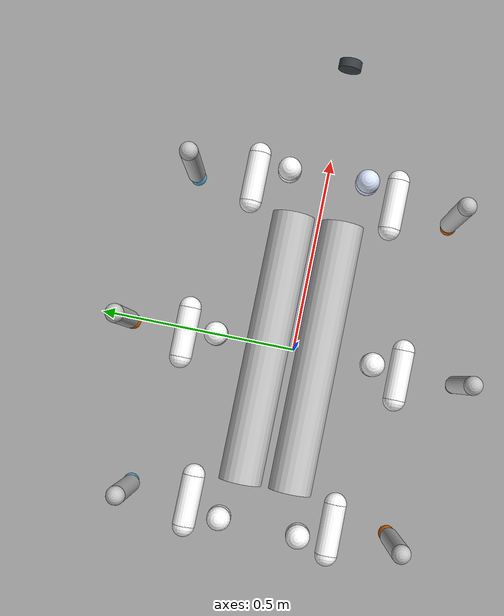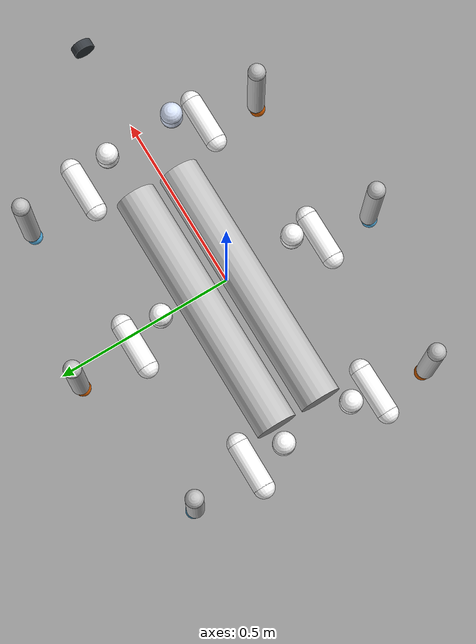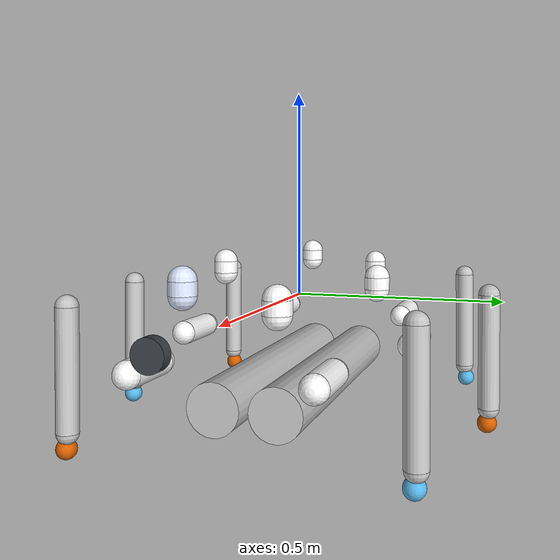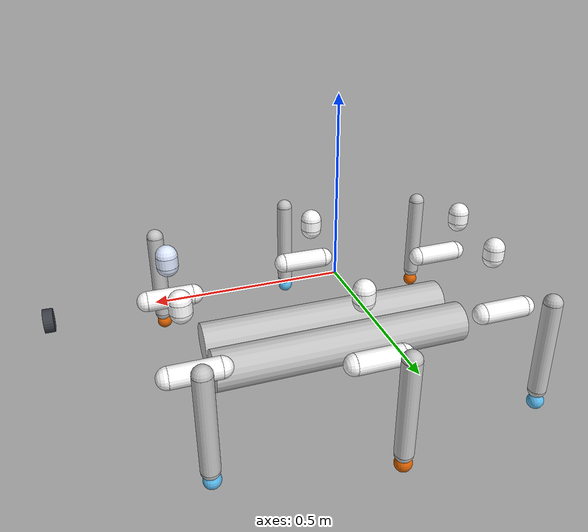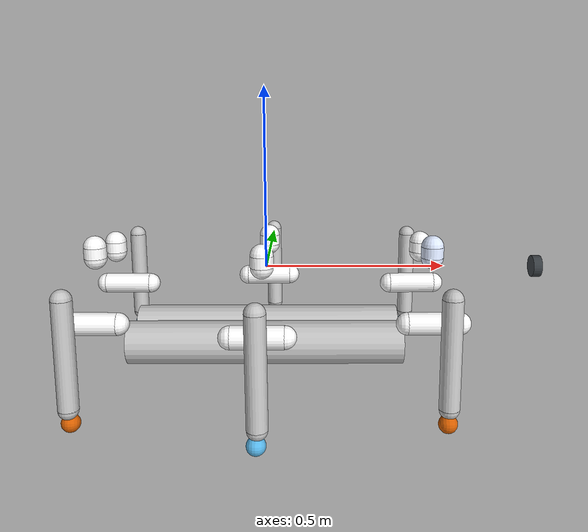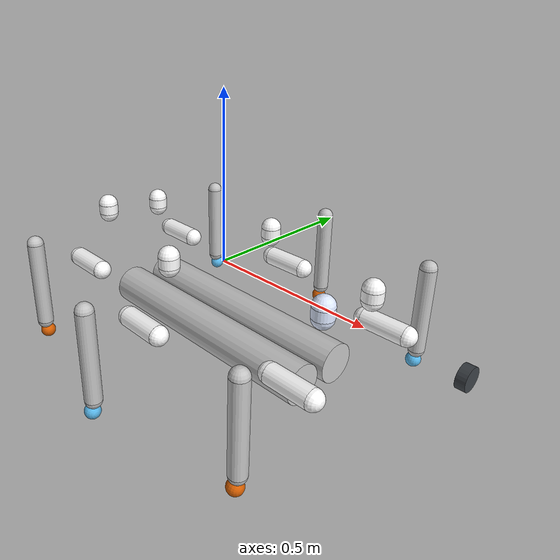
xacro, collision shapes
<?xml version="1.0"?>
<!-- Generated by ros2_ws/scripts/import_mjcf.py; edit the source MJCF, then regenerate. -->
<robot xmlns:xacro="http://www.ros.org/wiki/xacro" name="hexapod">
  <xacro:arg name="mesh_prefix" default="package://hexapod_description/meshes" />
  <xacro:arg name="use_ros2_control" default="false" />
  <xacro:arg name="controllers_file" default="" />
  <xacro:property name="joint_effort_limit" value="30.0" />
  <xacro:include filename="gazebo_plugins.xacro" />
  <link name="base_link" />
  <link name="trunk">
    <inertial>
      <origin xyz="-0.051 -0.01 0.02" rpy="-3.03392271704593 -1.538968659200342 -0.1109415958666737" />
      <mass value="19.901" />
      <inertia ixx="2.1248071580572585" iyy="1.886013209211989" izz="0.32217963273075" ixy="0" ixz="0" iyz="0" />
    </inertial>
    <visual>
      <origin xyz="0 0 0" rpy="0 -0 0" />
      <geometry>
        <mesh filename="$(arg mesh_prefix)/BASE.STL" scale="1 1 1" />
      </geometry>
      <material name="BASE_material">
        <color rgba="0.75294 0.75294 0.75294 1" />
      </material>
    </visual>
    <collision name="trunk_collision1">
      <origin xyz="0 0.07000000000000001 -0.2" rpy="-0 1.570796326794897 0" />
      <geometry>
        <cylinder radius="0.06" length="0.76" />
      </geometry>
    </collision>
    <collision name="trunk_collision2">
      <origin xyz="0 -0.07000000000000001 -0.2" rpy="-0 1.570796326794897 0" />
      <geometry>
        <cylinder radius="0.06" length="0.76" />
      </geometry>
    </collision>
  </link>
  <joint name="trunk_fixed" type="fixed">
    <origin xyz="0 0 0" rpy="0 -0 0" />
    <parent link="base_link" />
    <child link="trunk" />
  </joint>
  <gazebo reference="trunk">
    <mu1>0</mu1>
    <mu2>0</mu2>
    <selfCollide>false</selfCollide>
  </gazebo>
  <link name="RF_HIP">
    <inertial>
      <origin xyz="-0.078 0.031 0.149" rpy="1.570796326794897 -0 0.7853981633974482" />
      <mass value="1.411" />
      <inertia ixx="0.0030000000000000005" iyy="0.003" izz="0.0010000000000000002" ixy="0" ixz="0" iyz="0" />
    </inertial>
    <visual>
      <origin xyz="0 0 0" rpy="0 -0 0" />
      <geometry>
        <mesh filename="$(arg mesh_prefix)/RF_HIP.STL" scale="1 1 1" />
      </geometry>
      <material name="RF_HIP_material">
        <color rgba="0.866667 0.909804 1 1" />
      </material>
    </visual>
    <collision name="RF_HIP_collision_cylinder">
      <origin xyz="0 0 -0.015" rpy="0 -0 0" />
      <geometry>
        <cylinder radius="0.03" length="0.03" />
      </geometry>
    </collision>
    <collision name="RF_HIP_collision_cap_-1">
      <origin xyz="0 0 -0.03" rpy="0 -0 0" />
      <geometry>
        <sphere radius="0.03" />
      </geometry>
    </collision>
    <collision name="RF_HIP_collision_cap_+1">
      <origin xyz="0 0 0" rpy="0 -0 0" />
      <geometry>
        <sphere radius="0.03" />
      </geometry>
    </collision>
  </link>
  <joint name="RF_HAA" type="revolute">
    <origin xyz="0.45 -0.1 0.0495" rpy="-3.141585307179587 -8.470329472543003e-22 1.5708" />
    <axis xyz="0 0 1" />
    <limit lower="-0.8" upper="0.8" effort="30.0" velocity="16.44" />
    <dynamics damping="0.0" friction="0.0" />
    <parent link="trunk" />
    <child link="RF_HIP" />
  </joint>
  <gazebo reference="RF_HIP">
    <mu1>0</mu1>
    <mu2>0</mu2>
    <selfCollide>false</selfCollide>
  </gazebo>
  <link name="RF_THIGH">
    <inertial>
      <origin xyz="-0.022 0.01 -0.125" rpy="1.950716170079932 0.2480976014255599 1.173660483435697" />
      <mass value="1.286" />
      <inertia ixx="0.0036666666666666657" iyy="0.0036666666666666657" izz="0.0036666666666666657" ixy="0" ixz="0" iyz="0" />
    </inertial>
    <visual>
      <origin xyz="0 0 0" rpy="0 -0 0" />
      <geometry>
        <mesh filename="$(arg mesh_prefix)/RF_THIGH.STL" scale="1 1 1" />
      </geometry>
      <material name="RF_THIGH_material">
        <color rgba="1 1 1 1" />
      </material>
    </visual>
    <collision name="RF_THIGH_collision_cylinder">
      <origin xyz="-0.002196425 0.0009075750000000001 -0.08701038999999999" rpy="3.139189016357926 0.003787349668935167 2.010577764384156" />
      <geometry>
        <cylinder radius="0.03" length="0.13437661192466716" />
      </geometry>
    </collision>
    <collision name="RF_THIGH_collision_cap_-1">
      <origin xyz="-0.002450890000000005 0.001069070000000003 -0.01982276000000001" rpy="3.139189016357926 0.003787349668935167 2.010577764384156" />
      <geometry>
        <sphere radius="0.03" />
      </geometry>
    </collision>
    <collision name="RF_THIGH_collision_cap_+1">
      <origin xyz="-0.001941959999999996 0.0007460799999999971 -0.15419802" rpy="3.139189016357926 0.003787349668935167 2.010577764384156" />
      <geometry>
        <sphere radius="0.03" />
      </geometry>
    </collision>
  </link>
  <joint name="RF_HFE" type="revolute">
    <origin xyz="-0.09 0.0795 0.154" rpy="-1.5708 0 0" />
    <axis xyz="0 0 -1" />
    <limit lower="-0.6" upper="0.6" effort="30.0" velocity="16.44" />
    <dynamics damping="0.0" friction="0.0" />
    <parent link="RF_HIP" />
    <child link="RF_THIGH" />
  </joint>
  <gazebo reference="RF_THIGH">
    <mu1>0</mu1>
    <mu2>0</mu2>
    <selfCollide>false</selfCollide>
  </gazebo>
  <link name="RF_SHANK">
    <inertial>
      <origin xyz="-0.001 -0.107 -0.011" rpy="-1.878341869243487 -1.56900345411503 -2.822049567568201" />
      <mass value="0.578" />
      <inertia ixx="0.004520701381158515" iyy="0.004497037691589534" izz="6.64589272519547e-05" ixy="0" ixz="0" iyz="0" />
    </inertial>
    <visual>
      <origin xyz="0 0 0" rpy="0 -0 0" />
      <geometry>
        <mesh filename="$(arg mesh_prefix)/RF_SHANK.STL" scale="1 1 1" />
      </geometry>
      <material name="RF_SHANK_material">
        <color rgba="0.752941 0.752941 0.752941 1" />
      </material>
    </visual>
    <visual>
      <origin xyz="-0.0081826 -0.29917 -0.011107" rpy="0 -0 0" />
      <geometry>
        <mesh filename="$(arg mesh_prefix)/RF_FOOT.STL" scale="1 1 1" />
      </geometry>
      <material name="RF_FOOT_material">
        <color rgba="0.501961 0.501961 0.752941 1" />
      </material>
    </visual>
    <collision name="RF_SHANK_collision_cylinder">
      <origin xyz="-0.001477505 -0.104991655 -0.009442974999999999" rpy="-1.576299427101741 0.01350727884355073 -0.01358181374954405" />
      <geometry>
        <cylinder radius="0.025" length="0.27013738249840413" />
      </geometry>
    </collision>
    <collision name="RF_SHANK_collision_cap_-1">
      <origin xyz="-0.00330186 -0.24004598 -0.008699750000000003" rpy="-1.576299427101741 0.01350727884355073 -0.01358181374954405" />
      <geometry>
        <sphere radius="0.025" />
      </geometry>
    </collision>
    <collision name="RF_SHANK_collision_cap_+1">
      <origin xyz="0.0003468499999999997 0.03006266999999999 -0.0101862" rpy="-1.576299427101741 0.01350727884355073 -0.01358181374954405" />
      <geometry>
        <sphere radius="0.025" />
      </geometry>
    </collision>
  </link>
  <joint name="RF_KFE" type="revolute">
    <origin xyz="-0.1782 0.090798 -0.06850000000000001" rpy="0 -0 0" />
    <axis xyz="0 0 -1" />
    <limit lower="-0.6" upper="0.6" effort="30.0" velocity="16.44" />
    <dynamics damping="0.0" friction="0.0" />
    <parent link="RF_THIGH" />
    <child link="RF_SHANK" />
  </joint>
  <gazebo reference="RF_SHANK">
    <mu1>0</mu1>
    <mu2>0</mu2>
    <selfCollide>false</selfCollide>
  </gazebo>
  <link name="RF_FOOT">
    <inertial>
      <origin xyz="0.0031504903337603 0.0187638839574205 0.000250412469435801" rpy="1.390328214326708 -1.484613476818428 1.692801997508446" />
      <mass value="0.0652350471365656" />
      <inertia ixx="1.4315764226426566e-05" iyy="1.320438827790954e-05" izz="1.2144039852620194e-05" ixy="0" ixz="0" iyz="0" />
    </inertial>
    <collision name="RF_FOOT_collision">
      <origin xyz="0 0.02316999999999997 0" rpy="0 0 0" />
      <geometry>
        <sphere radius="0.023" />
      </geometry>
    </collision>
  </link>
  <joint name="RF_FOOT_fixed" type="fixed">
    <origin xyz="-0.0081826 -0.29917 -0.011107" rpy="0 -0 0" />
    <parent link="RF_SHANK" />
    <child link="RF_FOOT" />
  </joint>
  <gazebo reference="RF_FOOT">
    <mu1>1</mu1>
    <mu2>1</mu2>
    <selfCollide>false</selfCollide>
    <kp>200000</kp>
    <kd>50</kd>
    <minDepth>0.001</minDepth>
    <maxVel>0.1</maxVel>
  </gazebo>
  <link name="RM_HIP">
    <inertial>
      <origin xyz="-0.078 -0.042 0.149" rpy="1.570796326794897 -0 -0.7853981633974485" />
      <mass value="1.411" />
      <inertia ixx="0.0030000000000000005" iyy="0.003" izz="0.0010000000000000002" ixy="0" ixz="0" iyz="0" />
    </inertial>
    <visual>
      <origin xyz="0 0 0" rpy="0 -0 0" />
      <geometry>
        <mesh filename="$(arg mesh_prefix)/RM_HIP.STL" scale="1 1 1" />
      </geometry>
      <material name="RM_HIP_material">
        <color rgba="1 1 1 1" />
      </material>
    </visual>
    <collision name="RM_HIP_collision_cylinder">
      <origin xyz="0 0 -0.015" rpy="0 -0 0" />
      <geometry>
        <cylinder radius="0.03" length="0.03" />
      </geometry>
    </collision>
    <collision name="RM_HIP_collision_cap_-1">
      <origin xyz="0 0 -0.03" rpy="0 -0 0" />
      <geometry>
        <sphere radius="0.03" />
      </geometry>
    </collision>
    <collision name="RM_HIP_collision_cap_+1">
      <origin xyz="0 0 0" rpy="0 -0 0" />
      <geometry>
        <sphere radius="0.03" />
      </geometry>
    </collision>
  </link>
  <joint name="RM_HAA" type="revolute">
    <origin xyz="0 -0.2 0.0495" rpy="-3.141585307179587 -8.470329472543003e-22 1.5708" />
    <axis xyz="0 0 1" />
    <limit lower="-0.8" upper="0.8" effort="30.0" velocity="16.44" />
    <dynamics damping="0.0" friction="0.0" />
    <parent link="trunk" />
    <child link="RM_HIP" />
  </joint>
  <gazebo reference="RM_HIP">
    <mu1>0</mu1>
    <mu2>0</mu2>
    <selfCollide>false</selfCollide>
  </gazebo>
  <link name="RM_THIGH">
    <inertial>
      <origin xyz="-0.022 0.01 -0.045" rpy="1.305247066948262 0.3846841018954649 0.9436553837168812" />
      <mass value="1.286" />
      <inertia ixx="0.0033333333333333327" iyy="0.0033333333333333327" izz="0.0033333333333333327" ixy="0" ixz="0" iyz="0" />
    </inertial>
    <visual>
      <origin xyz="0 0 0" rpy="0 -0 0" />
      <geometry>
        <mesh filename="$(arg mesh_prefix)/RM_THIGH.STL" scale="1 1 1" />
      </geometry>
      <material name="RM_THIGH_material">
        <color rgba="1 1 1 1" />
      </material>
    </visual>
    <collision name="RM_THIGH_collision_cylinder">
      <origin xyz="-0.002196425 0.0009075750000000001 -0.08701038999999999" rpy="3.139189016357926 0.003787349668935167 2.010577764384156" />
      <geometry>
        <cylinder radius="0.03" length="0.13437661192466716" />
      </geometry>
    </collision>
    <collision name="RM_THIGH_collision_cap_-1">
      <origin xyz="-0.002450890000000005 0.001069070000000003 -0.01982276000000001" rpy="3.139189016357926 0.003787349668935167 2.010577764384156" />
      <geometry>
        <sphere radius="0.03" />
      </geometry>
    </collision>
    <collision name="RM_THIGH_collision_cap_+1">
      <origin xyz="-0.001941959999999996 0.0007460799999999971 -0.15419802" rpy="3.139189016357926 0.003787349668935167 2.010577764384156" />
      <geometry>
        <sphere radius="0.03" />
      </geometry>
    </collision>
  </link>
  <joint name="RM_HFE" type="revolute">
    <origin xyz="-0.09 0.0795 0.154" rpy="-1.5708 0 0" />
    <axis xyz="0 0 -1" />
    <limit lower="-0.6" upper="0.6" effort="30.0" velocity="16.44" />
    <dynamics damping="0.0" friction="0.0" />
    <parent link="RM_HIP" />
    <child link="RM_THIGH" />
  </joint>
  <gazebo reference="RM_THIGH">
    <mu1>0</mu1>
    <mu2>0</mu2>
    <selfCollide>false</selfCollide>
  </gazebo>
  <link name="RM_SHANK">
    <inertial>
      <origin xyz="-0.00122265540921052 -0.107332155640051 -0.0108827996779151" rpy="-1.87841360852262 -1.569003874218729 -2.821977622705278" />
      <mass value="0.577673514828141" />
      <inertia ixx="0.004520668887215322" iyy="0.00449699913748575" izz="6.645919544245582e-05" ixy="0" ixz="0" iyz="0" />
    </inertial>
    <visual>
      <origin xyz="0 0 0" rpy="0 -0 0" />
      <geometry>
        <mesh filename="$(arg mesh_prefix)/RM_SHANK.STL" scale="1 1 1" />
      </geometry>
      <material name="RM_SHANK_material">
        <color rgba="0.752941 0.752941 0.752941 1" />
      </material>
    </visual>
    <visual>
      <origin xyz="-0.00818264 -0.299167 -0.0111074" rpy="0 -0 0" />
      <geometry>
        <mesh filename="$(arg mesh_prefix)/RM_FOOT.STL" scale="1 1 1" />
      </geometry>
      <material name="RM_FOOT_material">
        <color rgba="0.501961 0.501961 0.752941 1" />
      </material>
    </visual>
    <collision name="RM_SHANK_collision_cylinder">
      <origin xyz="-0.001477505 -0.104991655 -0.009442974999999999" rpy="-1.576299427101741 0.01350727884355073 -0.01358181374954405" />
      <geometry>
        <cylinder radius="0.025" length="0.27013738249840413" />
      </geometry>
    </collision>
    <collision name="RM_SHANK_collision_cap_-1">
      <origin xyz="-0.00330186 -0.24004598 -0.008699750000000003" rpy="-1.576299427101741 0.01350727884355073 -0.01358181374954405" />
      <geometry>
        <sphere radius="0.025" />
      </geometry>
    </collision>
    <collision name="RM_SHANK_collision_cap_+1">
      <origin xyz="0.0003468499999999997 0.03006266999999999 -0.0101862" rpy="-1.576299427101741 0.01350727884355073 -0.01358181374954405" />
      <geometry>
        <sphere radius="0.025" />
      </geometry>
    </collision>
  </link>
  <joint name="RM_KFE" type="revolute">
    <origin xyz="-0.1782 0.090798 -0.06850000000000001" rpy="0 -0 0" />
    <axis xyz="0 0 -1" />
    <limit lower="-0.6" upper="0.6" effort="30.0" velocity="16.44" />
    <dynamics damping="0.0" friction="0.0" />
    <parent link="RM_THIGH" />
    <child link="RM_SHANK" />
  </joint>
  <gazebo reference="RM_SHANK">
    <mu1>0</mu1>
    <mu2>0</mu2>
    <selfCollide>false</selfCollide>
  </gazebo>
  <link name="RM_FOOT">
    <inertial>
      <origin xyz="0.00315050745146095 0.0187638697177974 0.000250453161413638" rpy="1.390285666262431 -1.484596919787784 1.692835745812257" />
      <mass value="0.0652348178450878" />
      <inertia ixx="1.4315750173681513e-05" iyy="1.3204348563991756e-05" izz="1.2143992822426737e-05" ixy="0" ixz="0" iyz="0" />
    </inertial>
    <collision name="RM_FOOT_collision">
      <origin xyz="7.671259408953413e-10 0.02316678454154697 -3.776643059914819e-08" rpy="0 0 0" />
      <geometry>
        <sphere radius="0.023" />
      </geometry>
    </collision>
  </link>
  <joint name="RM_FOOT_fixed" type="fixed">
    <origin xyz="-0.008182640767125941 -0.299166784541547 -0.0111073622335694" rpy="0 -0 0" />
    <parent link="RM_SHANK" />
    <child link="RM_FOOT" />
  </joint>
  <gazebo reference="RM_FOOT">
    <mu1>1</mu1>
    <mu2>1</mu2>
    <selfCollide>false</selfCollide>
    <kp>200000</kp>
    <kd>50</kd>
    <minDepth>0.001</minDepth>
    <maxVel>0.1</maxVel>
  </gazebo>
  <link name="RB_HIP">
    <inertial>
      <origin xyz="-0.078 -0.031 0.149" rpy="1.570796326794897 -0 -0.7853981633974485" />
      <mass value="1.411" />
      <inertia ixx="0.0030000000000000005" iyy="0.003" izz="0.0010000000000000002" ixy="0" ixz="0" iyz="0" />
    </inertial>
    <visual>
      <origin xyz="0 0 0" rpy="0 -0 0" />
      <geometry>
        <mesh filename="$(arg mesh_prefix)/RB_HIP.STL" scale="1 1 1" />
      </geometry>
      <material name="RB_HIP_material">
        <color rgba="1 1 1 1" />
      </material>
    </visual>
    <collision name="RB_HIP_collision_cylinder">
      <origin xyz="0 0 -0.015" rpy="0 -0 0" />
      <geometry>
        <cylinder radius="0.03" length="0.03" />
      </geometry>
    </collision>
    <collision name="RB_HIP_collision_cap_-1">
      <origin xyz="0 0 -0.03" rpy="0 -0 0" />
      <geometry>
        <sphere radius="0.03" />
      </geometry>
    </collision>
    <collision name="RB_HIP_collision_cap_+1">
      <origin xyz="0 0 0" rpy="0 -0 0" />
      <geometry>
        <sphere radius="0.03" />
      </geometry>
    </collision>
  </link>
  <joint name="RB_HAA" type="revolute">
    <origin xyz="-0.45 -0.1 0.0492" rpy="-3.141585307179587 -8.470329472543003e-22 1.5708" />
    <axis xyz="0 0 1" />
    <limit lower="-0.8" upper="0.8" effort="30.0" velocity="16.44" />
    <dynamics damping="0.0" friction="0.0" />
    <parent link="trunk" />
    <child link="RB_HIP" />
  </joint>
  <gazebo reference="RB_HIP">
    <mu1>0</mu1>
    <mu2>0</mu2>
    <selfCollide>false</selfCollide>
  </gazebo>
  <link name="RB_THIGH">
    <inertial>
      <origin xyz="-0.022 0.01 -0.049" rpy="1.190876483509862 -0.2480976014255599 1.173660483435697" />
      <mass value="1.286" />
      <inertia ixx="0.0036666666666666657" iyy="0.0036666666666666657" izz="0.0036666666666666657" ixy="0" ixz="0" iyz="0" />
    </inertial>
    <visual>
      <origin xyz="0 0 0" rpy="0 -0 0" />
      <geometry>
        <mesh filename="$(arg mesh_prefix)/RB_THIGH.STL" scale="1 1 1" />
      </geometry>
      <material name="RB_THIGH_material">
        <color rgba="1 1 1 1" />
      </material>
    </visual>
    <collision name="RB_THIGH_collision_cylinder">
      <origin xyz="-0.002146415 0.001109895 -0.08698154999999999" rpy="-3.133917923601859 -0.004588374216744666 1.07767854104147" />
      <geometry>
        <cylinder radius="0.03" length="0.13474754678329176" />
      </geometry>
    </collision>
    <collision name="RB_THIGH_collision_cap_-1">
      <origin xyz="-0.00183728 0.0005928299999999995 -0.01961046999999999" rpy="-3.133917923601859 -0.004588374216744666 1.07767854104147" />
      <geometry>
        <sphere radius="0.03" />
      </geometry>
    </collision>
    <collision name="RB_THIGH_collision_cap_+1">
      <origin xyz="-0.00245555 0.001626960000000001 -0.15435263" rpy="-3.133917923601859 -0.004588374216744666 1.07767854104147" />
      <geometry>
        <sphere radius="0.03" />
      </geometry>
    </collision>
  </link>
  <joint name="RB_HFE" type="revolute">
    <origin xyz="-0.09 0.0945 0.1537" rpy="-1.5708 0 0" />
    <axis xyz="0 0 -1" />
    <limit lower="-0.6" upper="0.6" effort="30.0" velocity="16.44" />
    <dynamics damping="0.0" friction="0.0" />
    <parent link="RB_HIP" />
    <child link="RB_THIGH" />
  </joint>
  <gazebo reference="RB_THIGH">
    <mu1>0</mu1>
    <mu2>0</mu2>
    <selfCollide>false</selfCollide>
  </gazebo>
  <link name="RB_SHANK">
    <inertial>
      <origin xyz="-0.00125500608314016 -0.107331782247017 -0.0111172003220849" rpy="1.392272777805907 -1.567740885147729 0.189607591688102" />
      <mass value="0.577673514828141" />
      <inertia ixx="0.004520669031377318" iyy="0.004496998992553572" izz="6.645919621263294e-05" ixy="0" ixz="0" iyz="0" />
    </inertial>
    <visual>
      <origin xyz="0 0 0" rpy="0 -0 0" />
      <geometry>
        <mesh filename="$(arg mesh_prefix)/RB_SHANK.STL" scale="1 1 1" />
      </geometry>
      <material name="RB_SHANK_material">
        <color rgba="0.752941 0.752941 0.752941 1" />
      </material>
    </visual>
    <visual>
      <origin xyz="0.00127539 -0.299276 -0.0108926" rpy="0 -0 0" />
      <geometry>
        <mesh filename="$(arg mesh_prefix)/RB_FOOT.STL" scale="1 1 1" />
      </geometry>
      <material name="RB_FOOT_material">
        <color rgba="0.501961 0.501961 0.752941 1" />
      </material>
    </visual>
    <collision name="RB_SHANK_collision_cylinder">
      <origin xyz="-0.0009462 -0.104997795 -0.012557025" rpy="-1.565293476252676 0.009575422288073673 -0.009522875415131006" />
      <geometry>
        <cylinder radius="0.025" length="0.2701373840461927" />
      </geometry>
    </collision>
    <collision name="RB_SHANK_collision_cap_-1">
      <origin xyz="-0.00223952 -0.24005825 -0.01330025" rpy="-1.565293476252676 0.009575422288073673 -0.009522875415131006" />
      <geometry>
        <sphere radius="0.025" />
      </geometry>
    </collision>
    <collision name="RB_SHANK_collision_cap_+1">
      <origin xyz="0.0003471199999999999 0.03006265999999999 -0.0118138" rpy="-1.565293476252676 0.009575422288073673 -0.009522875415131006" />
      <geometry>
        <sphere radius="0.025" />
      </geometry>
    </collision>
  </link>
  <joint name="RB_KFE" type="revolute">
    <origin xyz="-0.1782 0.090798 -0.0835" rpy="0 -0 0" />
    <axis xyz="0 0 1" />
    <limit lower="-0.6" upper="0.6" effort="30.0" velocity="16.44" />
    <dynamics damping="0.0" friction="0.0" />
    <parent link="RB_THIGH" />
    <child link="RB_SHANK" />
  </joint>
  <gazebo reference="RB_SHANK">
    <mu1>0</mu1>
    <mu2>0</mu2>
    <selfCollide>false</selfCollide>
  </gazebo>
  <link name="RB_FOOT">
    <inertial>
      <origin xyz="-0.00271658099999497 0.0188315867457449 -0.000250448844782425" rpy="-1.36406797436815 -1.485678708853727 -1.695754636713944" />
      <mass value="0.0652348538555784" />
      <inertia ixx="1.4315610110495273e-05" iyy="1.3204633567283392e-05" izz="1.2143883818071611e-05" ixy="0" ixz="0" iyz="0" />
    </inertial>
    <collision name="RB_FOOT_collision">
      <origin xyz="4.043380839998875e-09 0.02327594954074397 3.776643050026895e-08" rpy="0 0 0" />
      <geometry>
        <sphere radius="0.023" />
      </geometry>
    </collision>
  </link>
  <joint name="RB_FOOT_fixed" type="fixed">
    <origin xyz="0.00127538595661916 -0.299275949540744 -0.0108926377664305" rpy="0 -0 0" />
    <parent link="RB_SHANK" />
    <child link="RB_FOOT" />
  </joint>
  <gazebo reference="RB_FOOT">
    <mu1>1</mu1>
    <mu2>1</mu2>
    <selfCollide>false</selfCollide>
    <kp>200000</kp>
    <kd>50</kd>
    <minDepth>0.001</minDepth>
    <maxVel>0.1</maxVel>
  </gazebo>
  <link name="LF_HIP">
    <inertial>
      <origin xyz="-0.078 0.031 -0.149" rpy="1.570796326794897 -0 0.7853981633974482" />
      <mass value="1.411" />
      <inertia ixx="0.0030000000000000005" iyy="0.003" izz="0.0010000000000000002" ixy="0" ixz="0" iyz="0" />
    </inertial>
    <visual>
      <origin xyz="0 0 0" rpy="0 -0 0" />
      <geometry>
        <mesh filename="$(arg mesh_prefix)/LF_HIP.STL" scale="1 1 1" />
      </geometry>
      <material name="LF_HIP_material">
        <color rgba="1 1 1 1" />
      </material>
    </visual>
    <collision name="LF_HIP_collision_cylinder">
      <origin xyz="0 0 -0.015" rpy="0 -0 0" />
      <geometry>
        <cylinder radius="0.03" length="0.03" />
      </geometry>
    </collision>
    <collision name="LF_HIP_collision_cap_-1">
      <origin xyz="0 0 -0.03" rpy="0 -0 0" />
      <geometry>
        <sphere radius="0.03" />
      </geometry>
    </collision>
    <collision name="LF_HIP_collision_cap_+1">
      <origin xyz="0 0 0" rpy="0 -0 0" />
      <geometry>
        <sphere radius="0.03" />
      </geometry>
    </collision>
  </link>
  <joint name="LF_HAA" type="revolute">
    <origin xyz="0.45 0.1 0.0495" rpy="0 0 -1.5708" />
    <axis xyz="0 0 -1" />
    <limit lower="-0.8" upper="0.8" effort="30.0" velocity="16.44" />
    <dynamics damping="0.0" friction="0.0" />
    <parent link="trunk" />
    <child link="LF_HIP" />
  </joint>
  <gazebo reference="LF_HIP">
    <mu1>0</mu1>
    <mu2>0</mu2>
    <selfCollide>false</selfCollide>
  </gazebo>
  <link name="LF_THIGH">
    <inertial>
      <origin xyz="-0.022 0.01 0.125" rpy="1.190876483509862 -0.2480976014255599 1.173660483435697" />
      <mass value="1.286" />
      <inertia ixx="0.0036666666666666657" iyy="0.0036666666666666657" izz="0.0036666666666666657" ixy="0" ixz="0" iyz="0" />
    </inertial>
    <visual>
      <origin xyz="0 0 0" rpy="0 -0 0" />
      <geometry>
        <mesh filename="$(arg mesh_prefix)/LF_THIGH.STL" scale="1 1 1" />
      </geometry>
      <material name="LF_THIGH_material">
        <color rgba="1 1 1 1" />
      </material>
    </visual>
    <collision name="LF_THIGH_collision_cylinder">
      <origin xyz="-0.00219541 0.00113124 0.08701784" rpy="-3.134118848222859 -0.004180671295118061 1.020024408761711" />
      <geometry>
        <cylinder radius="0.03" length="0.13471559968462452" />
      </geometry>
    </collision>
    <collision name="LF_THIGH_collision_cap_-1">
      <origin xyz="-0.001913809999999996 0.000627829999999992 0.15437317" rpy="-3.134118848222859 -0.004180671295118061 1.020024408761711" />
      <geometry>
        <sphere radius="0.03" />
      </geometry>
    </collision>
    <collision name="LF_THIGH_collision_cap_+1">
      <origin xyz="-0.002477010000000004 0.001634650000000008 0.01966250999999998" rpy="-3.134118848222859 -0.004180671295118061 1.020024408761711" />
      <geometry>
        <sphere radius="0.03" />
      </geometry>
    </collision>
  </link>
  <joint name="LF_HFE" type="revolute">
    <origin xyz="-0.09 0.0795 -0.154" rpy="1.5708 -0 0" />
    <axis xyz="0 0 1" />
    <limit lower="-0.6" upper="0.6" effort="30.0" velocity="16.44" />
    <dynamics damping="0.0" friction="0.0" />
    <parent link="LF_HIP" />
    <child link="LF_THIGH" />
  </joint>
  <gazebo reference="LF_THIGH">
    <mu1>0</mu1>
    <mu2>0</mu2>
    <selfCollide>false</selfCollide>
  </gazebo>
  <link name="LF_SHANK">
    <inertial>
      <origin xyz="-0.00125500608314022 -0.107331782247018 0.0108827996779152" rpy="1.392272777810162 -1.567740885147656 0.1896075916838724" />
      <mass value="0.577673514828143" />
      <inertia ixx="0.0045206690313773275" iyy="0.004496998992553593" izz="6.645919621263342e-05" ixy="0" ixz="0" iyz="0" />
    </inertial>
    <visual>
      <origin xyz="0 0 0" rpy="0 -0 0" />
      <geometry>
        <mesh filename="$(arg mesh_prefix)/LF_SHANK.STL" scale="1 1 1" />
      </geometry>
      <material name="LF_SHANK_material">
        <color rgba="0.752941 0.752941 0.752941 1" />
      </material>
    </visual>
    <visual>
      <origin xyz="0.00127539 -0.299276 0.0111074" rpy="3.141592653589793 -0 3.141592653589793" />
      <geometry>
        <mesh filename="$(arg mesh_prefix)/LF_FOOT.STL" scale="1 1 1" />
      </geometry>
      <material name="LF_FOOT_material">
        <color rgba="0.501961 0.501961 0.752941 1" />
      </material>
    </visual>
    <collision name="LF_SHANK_collision_cylinder">
      <origin xyz="-0.0009462 -0.104997795 0.009442974999999999" rpy="-1.565293476252676 0.009575422288073673 -0.009522875415131006" />
      <geometry>
        <cylinder radius="0.025" length="0.2701373840461927" />
      </geometry>
    </collision>
    <collision name="LF_SHANK_collision_cap_-1">
      <origin xyz="-0.00223952 -0.24005825 0.008699749999999996" rpy="-1.565293476252676 0.009575422288073673 -0.009522875415131006" />
      <geometry>
        <sphere radius="0.025" />
      </geometry>
    </collision>
    <collision name="LF_SHANK_collision_cap_+1">
      <origin xyz="0.0003471199999999999 0.03006265999999999 0.0101862" rpy="-1.565293476252676 0.009575422288073673 -0.009522875415131006" />
      <geometry>
        <sphere radius="0.025" />
      </geometry>
    </collision>
  </link>
  <joint name="LF_KFE" type="revolute">
    <origin xyz="-0.1782 0.090798 0.06850000000000001" rpy="0 -0 0" />
    <axis xyz="0 0 1" />
    <limit lower="-0.6" upper="0.6" effort="30.0" velocity="16.44" />
    <dynamics damping="0.0" friction="0.0" />
    <parent link="LF_THIGH" />
    <child link="LF_SHANK" />
  </joint>
  <gazebo reference="LF_SHANK">
    <mu1>0</mu1>
    <mu2>0</mu2>
    <selfCollide>false</selfCollide>
  </gazebo>
  <link name="LF_FOOT">
    <inertial>
      <origin xyz="0.00271656736681947 0.0188315943234567 0.000250423430458835" rpy="1.364114445963603 -1.4856878800369 1.695715205337797" />
      <mass value="0.0652349946450809" />
      <inertia ixx="1.4315618846875535e-05" iyy="1.3204659341012527e-05" izz="1.2143912810914922e-05" ixy="0" ixz="0" iyz="0" />
    </inertial>
    <collision name="LF_FOOT_collision">
      <origin xyz="-4.043380639855154e-09 0.02327594954074397 -3.776643050026895e-08" rpy="0 0 0" />
      <geometry>
        <sphere radius="0.023" />
      </geometry>
    </collision>
  </link>
  <joint name="LF_FOOT_fixed" type="fixed">
    <origin xyz="0.00127538595661936 -0.299275949540744 0.0111073622335695" rpy="3.141592653589793 -0 3.141592653589793" />
    <parent link="LF_SHANK" />
    <child link="LF_FOOT" />
  </joint>
  <gazebo reference="LF_FOOT">
    <mu1>1</mu1>
    <mu2>1</mu2>
    <selfCollide>false</selfCollide>
    <kp>200000</kp>
    <kd>50</kd>
    <minDepth>0.001</minDepth>
    <maxVel>0.1</maxVel>
  </gazebo>
  <link name="LM_HIP">
    <inertial>
      <origin xyz="-0.078 -0.042 -0.149" rpy="1.570796326794897 -0 -0.7853981633974485" />
      <mass value="1.411" />
      <inertia ixx="0.0030000000000000005" iyy="0.003" izz="0.0010000000000000002" ixy="0" ixz="0" iyz="0" />
    </inertial>
    <visual>
      <origin xyz="0 0 0" rpy="0 -0 0" />
      <geometry>
        <mesh filename="$(arg mesh_prefix)/LM_HIP.STL" scale="1 1 1" />
      </geometry>
      <material name="LM_HIP_material">
        <color rgba="1 1 1 1" />
      </material>
    </visual>
    <collision name="LM_HIP_collision_cylinder">
      <origin xyz="0 0 -0.015" rpy="0 -0 0" />
      <geometry>
        <cylinder radius="0.03" length="0.03" />
      </geometry>
    </collision>
    <collision name="LM_HIP_collision_cap_-1">
      <origin xyz="0 0 -0.03" rpy="0 -0 0" />
      <geometry>
        <sphere radius="0.03" />
      </geometry>
    </collision>
    <collision name="LM_HIP_collision_cap_+1">
      <origin xyz="0 0 0" rpy="0 -0 0" />
      <geometry>
        <sphere radius="0.03" />
      </geometry>
    </collision>
  </link>
  <joint name="LM_HAA" type="revolute">
    <origin xyz="0 0.2 0.0495" rpy="0 0 -1.5708" />
    <axis xyz="0 0 -1" />
    <limit lower="-0.8" upper="0.8" effort="30.0" velocity="16.44" />
    <dynamics damping="0.0" friction="0.0" />
    <parent link="trunk" />
    <child link="LM_HIP" />
  </joint>
  <gazebo reference="LM_HIP">
    <mu1>0</mu1>
    <mu2>0</mu2>
    <selfCollide>false</selfCollide>
  </gazebo>
  <link name="LM_THIGH">
    <inertial>
      <origin xyz="-0.022 0.01 0.045" rpy="1.836345586641532 -0.3846841018954649 0.9436553837168812" />
      <mass value="1.286" />
      <inertia ixx="0.0033333333333333327" iyy="0.0033333333333333327" izz="0.0033333333333333327" ixy="0" ixz="0" iyz="0" />
    </inertial>
    <visual>
      <origin xyz="0 0 0" rpy="0 -0 0" />
      <geometry>
        <mesh filename="$(arg mesh_prefix)/LM_THIGH.STL" scale="1 1 1" />
      </geometry>
      <material name="LM_THIGH_material">
        <color rgba="1 1 1 1" />
      </material>
    </visual>
    <collision name="LM_THIGH_collision_cylinder">
      <origin xyz="-0.00219541 0.00113124 0.08701784" rpy="-3.134118848222859 -0.004180671295118061 1.020024408761711" />
      <geometry>
        <cylinder radius="0.03" length="0.13471559968462452" />
      </geometry>
    </collision>
    <collision name="LM_THIGH_collision_cap_-1">
      <origin xyz="-0.001913809999999996 0.000627829999999992 0.15437317" rpy="-3.134118848222859 -0.004180671295118061 1.020024408761711" />
      <geometry>
        <sphere radius="0.03" />
      </geometry>
    </collision>
    <collision name="LM_THIGH_collision_cap_+1">
      <origin xyz="-0.002477010000000004 0.001634650000000008 0.01966250999999998" rpy="-3.134118848222859 -0.004180671295118061 1.020024408761711" />
      <geometry>
        <sphere radius="0.03" />
      </geometry>
    </collision>
  </link>
  <joint name="LM_HFE" type="revolute">
    <origin xyz="-0.09 0.0795 -0.154" rpy="1.5708 -0 0" />
    <axis xyz="0 0 1" />
    <limit lower="-0.6" upper="0.6" effort="30.0" velocity="16.44" />
    <dynamics damping="0.0" friction="0.0" />
    <parent link="LM_HIP" />
    <child link="LM_THIGH" />
  </joint>
  <gazebo reference="LM_THIGH">
    <mu1>0</mu1>
    <mu2>0</mu2>
    <selfCollide>false</selfCollide>
  </gazebo>
  <link name="LM_SHANK">
    <inertial>
      <origin xyz="-0.00125500608314022 -0.107331782247017 0.0108827996779152" rpy="1.392272777805907 -1.567740885147729 0.189607591688102" />
      <mass value="0.577673514828143" />
      <inertia ixx="0.004520669031377328" iyy="0.004496998992553582" izz="6.645919621263327e-05" ixy="0" ixz="0" iyz="0" />
    </inertial>
    <visual>
      <origin xyz="0 0 0" rpy="0 -0 0" />
      <geometry>
        <mesh filename="$(arg mesh_prefix)/LM_SHANK.STL" scale="1 1 1" />
      </geometry>
      <material name="LM_SHANK_material">
        <color rgba="0.752941 0.752941 0.752941 1" />
      </material>
    </visual>
    <visual>
      <origin xyz="0.00127539 -0.299276 0.0111074" rpy="3.141592653589793 -0 3.141592653589793" />
      <geometry>
        <mesh filename="$(arg mesh_prefix)/LM_FOOT.STL" scale="1 1 1" />
      </geometry>
      <material name="LM_FOOT_material">
        <color rgba="0.501961 0.501961 0.752941 1" />
      </material>
    </visual>
    <collision name="LM_SHANK_collision_cylinder">
      <origin xyz="-0.0009462 -0.104997795 0.009442974999999999" rpy="-1.565293476252676 0.009575422288073673 -0.009522875415131006" />
      <geometry>
        <cylinder radius="0.025" length="0.2701373840461927" />
      </geometry>
    </collision>
    <collision name="LM_SHANK_collision_cap_-1">
      <origin xyz="-0.00223952 -0.24005825 0.008699749999999996" rpy="-1.565293476252676 0.009575422288073673 -0.009522875415131006" />
      <geometry>
        <sphere radius="0.025" />
      </geometry>
    </collision>
    <collision name="LM_SHANK_collision_cap_+1">
      <origin xyz="0.0003471199999999999 0.03006265999999999 0.0101862" rpy="-1.565293476252676 0.009575422288073673 -0.009522875415131006" />
      <geometry>
        <sphere radius="0.025" />
      </geometry>
    </collision>
  </link>
  <joint name="LM_KFE" type="revolute">
    <origin xyz="-0.1782 0.090798 0.06850000000000001" rpy="0 -0 0" />
    <axis xyz="0 0 1" />
    <limit lower="-0.6" upper="0.6" effort="30.0" velocity="16.44" />
    <dynamics damping="0.0" friction="0.0" />
    <parent link="LM_THIGH" />
    <child link="LM_SHANK" />
  </joint>
  <gazebo reference="LM_SHANK">
    <mu1>0</mu1>
    <mu2>0</mu2>
    <selfCollide>false</selfCollide>
  </gazebo>
  <link name="LM_FOOT">
    <inertial>
      <origin xyz="0.00271656361742079 0.0188316008407416 0.000250408389803666" rpy="1.364111046650585 -1.48569498435637 1.695720486885375" />
      <mass value="0.0652350820492717" />
      <inertia ixx="1.4315624436116419e-05" iyy="1.3204672863316933e-05" izz="1.2143930957087053e-05" ixy="0" ixz="0" iyz="0" />
    </inertial>
    <collision name="LM_FOOT_collision">
      <origin xyz="-4.043380750010095e-09 0.02327594954074397 -3.776643050026895e-08" rpy="0 0 0" />
      <geometry>
        <sphere radius="0.023" />
      </geometry>
    </collision>
  </link>
  <joint name="LM_FOOT_fixed" type="fixed">
    <origin xyz="0.00127538595661925 -0.299275949540744 0.0111073622335695" rpy="3.141592653589793 -0 3.141592653589793" />
    <parent link="LM_SHANK" />
    <child link="LM_FOOT" />
  </joint>
  <gazebo reference="LM_FOOT">
    <mu1>1</mu1>
    <mu2>1</mu2>
    <selfCollide>false</selfCollide>
    <kp>200000</kp>
    <kd>50</kd>
    <minDepth>0.001</minDepth>
    <maxVel>0.1</maxVel>
  </gazebo>
  <link name="LB_HIP">
    <inertial>
      <origin xyz="-0.078 -0.031 -0.149" rpy="1.570796326794897 -0 -0.7853981633974485" />
      <mass value="1.411" />
      <inertia ixx="0.0030000000000000005" iyy="0.003" izz="0.0010000000000000002" ixy="0" ixz="0" iyz="0" />
    </inertial>
    <visual>
      <origin xyz="0 0 0" rpy="0 -0 0" />
      <geometry>
        <mesh filename="$(arg mesh_prefix)/LB_HIP.STL" scale="1 1 1" />
      </geometry>
      <material name="LB_HIP_material">
        <color rgba="1 1 1 1" />
      </material>
    </visual>
    <collision name="LB_HIP_collision_cylinder">
      <origin xyz="0 0 -0.015" rpy="0 -0 0" />
      <geometry>
        <cylinder radius="0.03" length="0.03" />
      </geometry>
    </collision>
    <collision name="LB_HIP_collision_cap_-1">
      <origin xyz="0 0 -0.03" rpy="0 -0 0" />
      <geometry>
        <sphere radius="0.03" />
      </geometry>
    </collision>
    <collision name="LB_HIP_collision_cap_+1">
      <origin xyz="0 0 0" rpy="0 -0 0" />
      <geometry>
        <sphere radius="0.03" />
      </geometry>
    </collision>
  </link>
  <joint name="LB_HAA" type="revolute">
    <origin xyz="-0.45 0.1 0.0495" rpy="0 0 -1.5708" />
    <axis xyz="0 0 -1" />
    <limit lower="-0.8" upper="0.8" effort="30.0" velocity="16.44" />
    <dynamics damping="0.0" friction="0.0" />
    <parent link="trunk" />
    <child link="LB_HIP" />
  </joint>
  <gazebo reference="LB_HIP">
    <mu1>0</mu1>
    <mu2>0</mu2>
    <selfCollide>false</selfCollide>
  </gazebo>
  <link name="LB_THIGH">
    <inertial>
      <origin xyz="-0.022 0.01 0.049" rpy="1.950716170079932 0.2480976014255599 1.173660483435697" />
      <mass value="1.286" />
      <inertia ixx="0.0036666666666666657" iyy="0.0036666666666666657" izz="0.0036666666666666657" ixy="0" ixz="0" iyz="0" />
    </inertial>
    <visual>
      <origin xyz="0 0 0" rpy="0 -0 0" />
      <geometry>
        <mesh filename="$(arg mesh_prefix)/LB_THIGH.STL" scale="1 1 1" />
      </geometry>
      <material name="LB_THIGH_material">
        <color rgba="1 1 1 1" />
      </material>
    </visual>
    <collision name="LB_THIGH_collision_cylinder">
      <origin xyz="-0.002196425 0.0009075750000000001 0.086989605" rpy="3.1391890165368 0.003787349387090546 2.010577764384834" />
      <geometry>
        <cylinder radius="0.03" length="0.13437662192456654" />
      </geometry>
    </collision>
    <collision name="LB_THIGH_collision_cap_-1">
      <origin xyz="-0.002450889999999989 0.001069069999999993 0.15417724" rpy="3.1391890165368 0.003787349387090546 2.010577764384834" />
      <geometry>
        <sphere radius="0.03" />
      </geometry>
    </collision>
    <collision name="LB_THIGH_collision_cap_+1">
      <origin xyz="-0.001941960000000011 0.0007460800000000071 0.01980197" rpy="3.1391890165368 0.003787349387090546 2.010577764384834" />
      <geometry>
        <sphere radius="0.03" />
      </geometry>
    </collision>
  </link>
  <joint name="LB_HFE" type="revolute">
    <origin xyz="-0.09 0.0945 -0.154" rpy="1.5708 -0 0" />
    <axis xyz="0 0 1" />
    <limit lower="-0.6" upper="0.6" effort="30.0" velocity="16.44" />
    <dynamics damping="0.0" friction="0.0" />
    <parent link="LB_HIP" />
    <child link="LB_THIGH" />
  </joint>
  <gazebo reference="LB_THIGH">
    <mu1>0</mu1>
    <mu2>0</mu2>
    <selfCollide>false</selfCollide>
  </gazebo>
  <link name="LB_SHANK">
    <inertial>
      <origin xyz="-0.00122265540921052 -0.107332155640051 0.0111172003220849" rpy="-1.87841360852262 -1.569003874218729 -2.821977622705278" />
      <mass value="0.577673514828144" />
      <inertia ixx="0.004520668887215343" iyy="0.0044969991374857595" izz="6.645919544245625e-05" ixy="0" ixz="0" iyz="0" />
    </inertial>
    <visual>
      <origin xyz="0 0 0" rpy="0 -0 0" />
      <geometry>
        <mesh filename="$(arg mesh_prefix)/LB_SHANK.STL" scale="1 1 1" />
      </geometry>
      <material name="LB_SHANK_material">
        <color rgba="0.752941 0.752941 0.752941 1" />
      </material>
    </visual>
    <visual>
      <origin xyz="-0.00818264 -0.299167 0.0108926" rpy="3.141592653589793 -0 3.141592653589793" />
      <geometry>
        <mesh filename="$(arg mesh_prefix)/LB_FOOT.STL" scale="1 1 1" />
      </geometry>
      <material name="LB_FOOT_material">
        <color rgba="0.501961 0.501961 0.752941 1" />
      </material>
    </visual>
    <collision name="LB_SHANK_collision_cylinder">
      <origin xyz="-0.001477505 -0.104991655 0.012557025" rpy="-1.576299427101741 0.01350727884355073 -0.01358181374954405" />
      <geometry>
        <cylinder radius="0.025" length="0.27013738249840413" />
      </geometry>
    </collision>
    <collision name="LB_SHANK_collision_cap_-1">
      <origin xyz="-0.00330186 -0.24004598 0.01330025" rpy="-1.576299427101741 0.01350727884355073 -0.01358181374954405" />
      <geometry>
        <sphere radius="0.025" />
      </geometry>
    </collision>
    <collision name="LB_SHANK_collision_cap_+1">
      <origin xyz="0.0003468499999999997 0.03006266999999999 0.0118138" rpy="-1.576299427101741 0.01350727884355073 -0.01358181374954405" />
      <geometry>
        <sphere radius="0.025" />
      </geometry>
    </collision>
  </link>
  <joint name="LB_KFE" type="revolute">
    <origin xyz="-0.1782 0.090798 0.0835" rpy="0 -0 0" />
    <axis xyz="0 0 -1" />
    <limit lower="-0.6" upper="0.6" effort="30.0" velocity="16.44" />
    <dynamics damping="0.0" friction="0.0" />
    <parent link="LB_THIGH" />
    <child link="LB_SHANK" />
  </joint>
  <gazebo reference="LB_SHANK">
    <mu1>0</mu1>
    <mu2>0</mu2>
    <selfCollide>false</selfCollide>
  </gazebo>
  <link name="LB_FOOT">
    <inertial>
      <origin xyz="-0.00315049033377091 0.0187638839574036 -0.000250412469440964" rpy="-1.39032821430605 -1.484613476809193 -1.692801997514609" />
      <mass value="0.0652350471365002" />
      <inertia ixx="1.4315764226387122e-05" iyy="1.3204388277895944e-05" izz="1.2144039852585019e-05" ixy="0" ixz="0" iyz="0" />
    </inertial>
    <collision name="LB_FOOT_collision">
      <origin xyz="-7.671260501829202e-10 0.02316678454154697 3.776643119936252e-08" rpy="0 0 0" />
      <geometry>
        <sphere radius="0.023" />
      </geometry>
    </collision>
  </link>
  <joint name="LB_FOOT_fixed" type="fixed">
    <origin xyz="-0.00818264076712605 -0.299166784541547 0.0108926377664312" rpy="3.141592653589793 -0 3.141592653589793" />
    <parent link="LB_SHANK" />
    <child link="LB_FOOT" />
  </joint>
  <gazebo reference="LB_FOOT">
    <mu1>1</mu1>
    <mu2>1</mu2>
    <selfCollide>false</selfCollide>
    <kp>200000</kp>
    <kd>50</kd>
    <minDepth>0.001</minDepth>
    <maxVel>0.1</maxVel>
  </gazebo>
  <gazebo reference="RF_FOOT_fixed">
    <preserveFixedJoint>true</preserveFixedJoint>
  </gazebo>
  <gazebo reference="RM_FOOT_fixed">
    <preserveFixedJoint>true</preserveFixedJoint>
  </gazebo>
  <gazebo reference="RB_FOOT_fixed">
    <preserveFixedJoint>true</preserveFixedJoint>
  </gazebo>
  <gazebo reference="LF_FOOT_fixed">
    <preserveFixedJoint>true</preserveFixedJoint>
  </gazebo>
  <gazebo reference="LM_FOOT_fixed">
    <preserveFixedJoint>true</preserveFixedJoint>
  </gazebo>
  <gazebo reference="LB_FOOT_fixed">
    <preserveFixedJoint>true</preserveFixedJoint>
  </gazebo>
  <xacro:include filename="airy_lidar.xacro" />
</robot>

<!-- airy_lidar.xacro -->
<robot xmlns:xacro="http://www.ros.org/wiki/xacro">
  <!-- 独立于 MJCF 转换结果，重新导入机器人时保留雷达安装配置。 -->
  <xacro:arg name="use_airy" default="true" />
  <xacro:arg name="airy_horizontal_samples" default="900" />
  <xacro:arg name="airy_vertical_samples" default="96" />

  <xacro:if value="$(arg use_airy)">
    <!-- 相对 trunk：机身前沿约 x=0.50 m，再向前 0.25 m。
         R_y(pi/2) 将雷达 +Z 映射到机体 +X，+X 映射到机体 -Z。
         原点取雷达底座中心；未指定高度，先与 trunk 原点等高。 -->
    <joint name="airy_mount_joint" type="fixed">
      <parent link="trunk" />
      <child link="airy_link" />
      <origin xyz="0.75 0 0" rpy="0 ${pi/2} 0" />
    </joint>
    <link name="airy_link">
      <!-- 按官方 0.23 kg、直径 60 mm、高 63 mm 近似为均匀圆柱。
           惯量不是厂家实测值；外观使用圆柱与球面近似，没有使用官方 CAD。 -->
      <inertial>
        <origin xyz="0 0 0.0315" rpy="0 0 0" />
        <mass value="0.23" />
        <inertia ixx="0.0001278225" iyy="0.0001278225" izz="0.0001035"
                 ixy="0" ixz="0" iyz="0" />
      </inertial>
      <visual name="airy_base">
        <origin xyz="0 0 0.0165" rpy="0 0 0" />
        <geometry><cylinder radius="0.03" length="0.033" /></geometry>
        <material name="airy_base_gray"><color rgba="0.22 0.24 0.26 1" /></material>
      </visual>
      <visual name="airy_cover">
        <origin xyz="0 0 0.033" rpy="0 0 0" />
        <geometry><sphere radius="0.03" /></geometry>
        <material name="airy_cover_black"><color rgba="0.025 0.03 0.04 1" /></material>
      </visual>
      <!-- 碰撞体只覆盖底座，避免理想扫描射线击中自己的透明保护罩。 -->
      <collision name="airy_link_base_collision">
        <origin xyz="0 0 0.012" rpy="0 0 0" />
        <geometry><cylinder radius="0.03" length="0.024" /></geometry>
      </collision>
    </link>

    <!-- 理想扫描中心暂取底座沿本地 Z 偏移 33 mm；非实机光学标定值。
         单独发布 TF，确保点云原点与射线原点一致；轴向与 airy_link 相同。 -->
    <joint name="airy_scan_joint" type="fixed">
      <parent link="airy_link" />
      <child link="airy_scan" />
      <origin xyz="0 0 0.033" rpy="0 0 0" />
    </joint>
    <link name="airy_scan" />
    <gazebo reference="airy_mount_joint">
      <preserveFixedJoint>true</preserveFixedJoint>
    </gazebo>
    <gazebo reference="airy_link">
      <selfCollide>false</selfCollide>
      <sensor name="airy_lidar" type="ray">
        <pose>0 0 0.033 0 0 0</pose>
        <always_on>true</always_on>
        <update_rate>10</update_rate>
        <visualize>false</visualize>
        <ray>
          <scan>
            <!-- Airy 本地 +Z 方向为半球中心：方位 360°、仰角 0~90°。
                 900 个方位样本对应 0.4°，去掉 0°/360°重复端点。
                 安装后半球覆盖机器人前方，不是全向水平扫描。 -->
            <horizontal>
              <samples>$(arg airy_horizontal_samples)</samples>
              <resolution>1</resolution>
              <min_angle>0</min_angle>
              <max_angle>${2*pi*(1-1/int('$(arg airy_horizontal_samples)'))}</max_angle>
            </horizontal>
            <vertical>
              <samples>$(arg airy_vertical_samples)</samples>
              <resolution>1</resolution>
              <min_angle>0</min_angle>
              <max_angle>${pi/2}</max_angle>
            </vertical>
          </scan>
          <range><min>0.1</min><max>60</max><resolution>0.01</resolution></range>
          <noise><type>gaussian</type><mean>0</mean><stddev>0.015</stddev></noise>
        </ray>
        <plugin name="airy_pointcloud" filename="libgazebo_ros_ray_sensor.so">
          <ros><remapping>~/out:=/airy/points</remapping></ros>
          <output_type>sensor_msgs/PointCloud2</output_type>
          <frame_name>airy_scan</frame_name>
        </plugin>
      </sensor>
    </gazebo>
  </xacro:if>
</robot>
